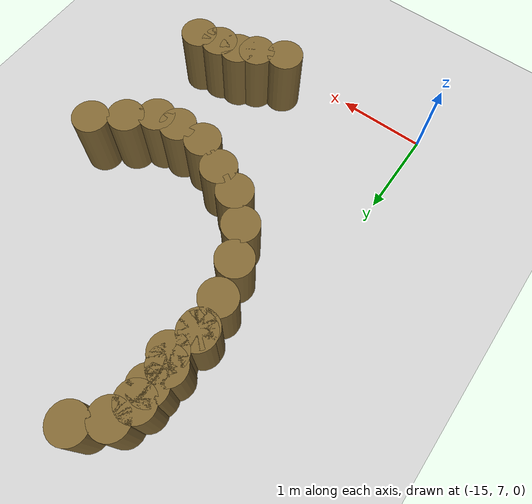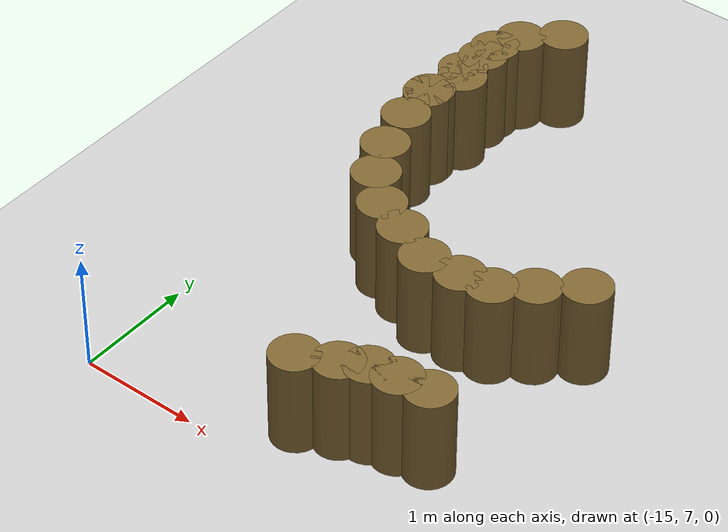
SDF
<sdf version="1.6">
 <world name="default">
  <model name="ground_plane">
   <static>1</static>
   <link name="link">
    <collision name="collision">
     <geometry><plane><normal>0 0 1</normal><size>100 100</size></plane></geometry>
     <surface><friction><ode><mu>100</mu><mu2>50</mu2></ode></friction></surface>
    </collision>
    <visual name="visual">
     <cast_shadows>0</cast_shadows>
     <geometry><plane><normal>0 0 1</normal><size>100 100</size></plane></geometry>
     <material>
      <script><uri>file://media/materials/scripts/gazebo.material</uri><name>Gazebo/Grey</name></script>
     </material>
    </visual>
   </link>
  </model>
  <model name="mini_cylinder_0_clone_0_clone_clone_clone_clone_3_clone_20_clone_59">
   <link name="link">
    <inertial>
     <mass>1</mass>
     <inertia><ixx>0.145833</ixx><ixy>0</ixy><ixz>0</ixz><iyy>0.145833</iyy><iyz>0</iyz><izz>0.125</izz></inertia>
    </inertial>
    <visual name="visual">
     <geometry><cylinder><radius>0.2</radius><length>0.8</length></cylinder></geometry>
     <material>
      <script><name>Gazebo/Grey</name><uri>file://media/materials/scripts/gazebo.material</uri></script>
      <shader type="vertex"><normal_map>__default__</normal_map></shader>
      <ambient>0.5 0.4 0.2 1</ambient>
      <diffuse>0.7 0.7 0.7 1</diffuse>
      <specular>0.01 0.01 0.01 1</specular>
      <emissive>0 0 0 1</emissive>
     </material>
    </visual>
    <collision name="collision">
     <geometry><cylinder><radius>0.2</radius><length>0.8</length></cylinder></geometry>
     <surface>
      <friction>
       <ode><mu>1</mu><mu2>1</mu2><fdir1>0 0 0</fdir1><slip1>0</slip1><slip2>0</slip2></ode>
       <torsional>
        <coefficient>1</coefficient>
        <patch_radius>0</patch_radius>
        <surface_radius>0</surface_radius>
        <use_patch_radius>1</use_patch_radius>
        <ode><slip>0</slip></ode>
       </torsional>
      </friction>
      <bounce><restitution_coefficient>0</restitution_coefficient><threshold>1e+06</threshold></bounce>
      <contact>
       <collide_without_contact>0</collide_without_contact>
       <collide_without_contact_bitmask>1</collide_without_contact_bitmask>
       <collide_bitmask>1</collide_bitmask>
       <ode>
        <soft_cfm>0</soft_cfm>
        <soft_erp>0.2</soft_erp>
        <kp>1e+13</kp>
        <kd>1</kd>
        <max_vel>0.01</max_vel>
        <min_depth>0</min_depth>
       </ode>
       <bullet>
        <split_impulse>1</split_impulse>
        <split_impulse_penetration_threshold>-0.01</split_impulse_penetration_threshold>
        <soft_cfm>0</soft_cfm>
        <soft_erp>0.2</soft_erp>
        <kp>1e+13</kp>
        <kd>1</kd>
       </bullet>
      </contact>
     </surface>
    </collision>
   </link>
   <static>1</static>
   <pose>-13.3251 7.39537 0.4 0 -0 0</pose>
  </model>
  <model name="mini_cylinder_0_clone_0_clone_clone_clone_clone_3_clone_20_clone_60">
   <link name="link">
    <inertial>
     <mass>1</mass>
     <inertia><ixx>0.145833</ixx><ixy>0</ixy><ixz>0</ixz><iyy>0.145833</iyy><iyz>0</iyz><izz>0.125</izz></inertia>
    </inertial>
    <visual name="visual">
     <geometry><cylinder><radius>0.2</radius><length>0.8</length></cylinder></geometry>
     <material>
      <script><name>Gazebo/Grey</name><uri>file://media/materials/scripts/gazebo.material</uri></script>
      <shader type="vertex"><normal_map>__default__</normal_map></shader>
      <ambient>0.5 0.4 0.2 1</ambient>
      <diffuse>0.7 0.7 0.7 1</diffuse>
      <specular>0.01 0.01 0.01 1</specular>
      <emissive>0 0 0 1</emissive>
     </material>
    </visual>
    <collision name="collision">
     <geometry><cylinder><radius>0.2</radius><length>0.8</length></cylinder></geometry>
     <surface>
      <friction>
       <ode><mu>1</mu><mu2>1</mu2><fdir1>0 0 0</fdir1><slip1>0</slip1><slip2>0</slip2></ode>
       <torsional>
        <coefficient>1</coefficient>
        <patch_radius>0</patch_radius>
        <surface_radius>0</surface_radius>
        <use_patch_radius>1</use_patch_radius>
        <ode><slip>0</slip></ode>
       </torsional>
      </friction>
      <bounce><restitution_coefficient>0</restitution_coefficient><threshold>1e+06</threshold></bounce>
      <contact>
       <collide_without_contact>0</collide_without_contact>
       <collide_without_contact_bitmask>1</collide_without_contact_bitmask>
       <collide_bitmask>1</collide_bitmask>
       <ode>
        <soft_cfm>0</soft_cfm>
        <soft_erp>0.2</soft_erp>
        <kp>1e+13</kp>
        <kd>1</kd>
        <max_vel>0.01</max_vel>
        <min_depth>0</min_depth>
       </ode>
       <bullet>
        <split_impulse>1</split_impulse>
        <split_impulse_penetration_threshold>-0.01</split_impulse_penetration_threshold>
        <soft_cfm>0</soft_cfm>
        <soft_erp>0.2</soft_erp>
        <kp>1e+13</kp>
        <kd>1</kd>
       </bullet>
      </contact>
     </surface>
    </collision>
   </link>
   <static>1</static>
   <pose>-13.0347 7.53038 0.4 0 -0 0</pose>
  </model>
  <model name="mini_cylinder_0_clone_0_clone_clone_clone_clone_3_clone_20_clone_61">
   <link name="link">
    <inertial>
     <mass>1</mass>
     <inertia><ixx>0.145833</ixx><ixy>0</ixy><ixz>0</ixz><iyy>0.145833</iyy><iyz>0</iyz><izz>0.125</izz></inertia>
    </inertial>
    <visual name="visual">
     <geometry><cylinder><radius>0.2</radius><length>0.8</length></cylinder></geometry>
     <material>
      <script><name>Gazebo/Grey</name><uri>file://media/materials/scripts/gazebo.material</uri></script>
      <shader type="vertex"><normal_map>__default__</normal_map></shader>
      <ambient>0.5 0.4 0.2 1</ambient>
      <diffuse>0.7 0.7 0.7 1</diffuse>
      <specular>0.01 0.01 0.01 1</specular>
      <emissive>0 0 0 1</emissive>
     </material>
    </visual>
    <collision name="collision">
     <geometry><cylinder><radius>0.2</radius><length>0.8</length></cylinder></geometry>
     <surface>
      <friction>
       <ode><mu>1</mu><mu2>1</mu2><fdir1>0 0 0</fdir1><slip1>0</slip1><slip2>0</slip2></ode>
       <torsional>
        <coefficient>1</coefficient>
        <patch_radius>0</patch_radius>
        <surface_radius>0</surface_radius>
        <use_patch_radius>1</use_patch_radius>
        <ode><slip>0</slip></ode>
       </torsional>
      </friction>
      <bounce><restitution_coefficient>0</restitution_coefficient><threshold>1e+06</threshold></bounce>
      <contact>
       <collide_without_contact>0</collide_without_contact>
       <collide_without_contact_bitmask>1</collide_without_contact_bitmask>
       <collide_bitmask>1</collide_bitmask>
       <ode>
        <soft_cfm>0</soft_cfm>
        <soft_erp>0.2</soft_erp>
        <kp>1e+13</kp>
        <kd>1</kd>
        <max_vel>0.01</max_vel>
        <min_depth>0</min_depth>
       </ode>
       <bullet>
        <split_impulse>1</split_impulse>
        <split_impulse_penetration_threshold>-0.01</split_impulse_penetration_threshold>
        <soft_cfm>0</soft_cfm>
        <soft_erp>0.2</soft_erp>
        <kp>1e+13</kp>
        <kd>1</kd>
       </bullet>
      </contact>
     </surface>
    </collision>
   </link>
   <static>1</static>
   <pose>-12.6146 7.668 0.4 0 -0 0</pose>
  </model>
  <model name="mini_cylinder_0_clone_0_clone_clone_clone_clone_3_clone_20_clone_63">
   <link name="link">
    <inertial>
     <mass>1</mass>
     <inertia><ixx>0.145833</ixx><ixy>0</ixy><ixz>0</ixz><iyy>0.145833</iyy><iyz>0</iyz><izz>0.125</izz></inertia>
    </inertial>
    <visual name="visual">
     <geometry><cylinder><radius>0.2</radius><length>0.8</length></cylinder></geometry>
     <material>
      <script><name>Gazebo/Grey</name><uri>file://media/materials/scripts/gazebo.material</uri></script>
      <shader type="vertex"><normal_map>__default__</normal_map></shader>
      <ambient>0.5 0.4 0.2 1</ambient>
      <diffuse>0.7 0.7 0.7 1</diffuse>
      <specular>0.01 0.01 0.01 1</specular>
      <emissive>0 0 0 1</emissive>
     </material>
    </visual>
    <collision name="collision">
     <geometry><cylinder><radius>0.2</radius><length>0.8</length></cylinder></geometry>
     <surface>
      <friction>
       <ode><mu>1</mu><mu2>1</mu2><fdir1>0 0 0</fdir1><slip1>0</slip1><slip2>0</slip2></ode>
       <torsional>
        <coefficient>1</coefficient>
        <patch_radius>0</patch_radius>
        <surface_radius>0</surface_radius>
        <use_patch_radius>1</use_patch_radius>
        <ode><slip>0</slip></ode>
       </torsional>
      </friction>
      <bounce><restitution_coefficient>0</restitution_coefficient><threshold>1e+06</threshold></bounce>
      <contact>
       <collide_without_contact>0</collide_without_contact>
       <collide_without_contact_bitmask>1</collide_without_contact_bitmask>
       <collide_bitmask>1</collide_bitmask>
       <ode>
        <soft_cfm>0</soft_cfm>
        <soft_erp>0.2</soft_erp>
        <kp>1e+13</kp>
        <kd>1</kd>
        <max_vel>0.01</max_vel>
        <min_depth>0</min_depth>
       </ode>
       <bullet>
        <split_impulse>1</split_impulse>
        <split_impulse_penetration_threshold>-0.01</split_impulse_penetration_threshold>
        <soft_cfm>0</soft_cfm>
        <soft_erp>0.2</soft_erp>
        <kp>1e+13</kp>
        <kd>1</kd>
       </bullet>
      </contact>
     </surface>
    </collision>
   </link>
   <static>1</static>
   <pose>-12.8414 7.63132 0.4 0 -0 0</pose>
  </model>
  <model name="mini_cylinder_0_clone_0_clone_clone_clone_clone_3_clone_20_clone_64">
   <link name="link">
    <inertial>
     <mass>1</mass>
     <inertia><ixx>0.145833</ixx><ixy>0</ixy><ixz>0</ixz><iyy>0.145833</iyy><iyz>0</iyz><izz>0.125</izz></inertia>
    </inertial>
    <visual name="visual">
     <geometry><cylinder><radius>0.2</radius><length>0.8</length></cylinder></geometry>
     <material>
      <script><name>Gazebo/Grey</name><uri>file://media/materials/scripts/gazebo.material</uri></script>
      <shader type="vertex"><normal_map>__default__</normal_map></shader>
      <ambient>0.5 0.4 0.2 1</ambient>
      <diffuse>0.7 0.7 0.7 1</diffuse>
      <specular>0.01 0.01 0.01 1</specular>
      <emissive>0 0 0 1</emissive>
     </material>
    </visual>
    <collision name="collision">
     <geometry><cylinder><radius>0.2</radius><length>0.8</length></cylinder></geometry>
     <surface>
      <friction>
       <ode><mu>1</mu><mu2>1</mu2><fdir1>0 0 0</fdir1><slip1>0</slip1><slip2>0</slip2></ode>
       <torsional>
        <coefficient>1</coefficient>
        <patch_radius>0</patch_radius>
        <surface_radius>0</surface_radius>
        <use_patch_radius>1</use_patch_radius>
        <ode><slip>0</slip></ode>
       </torsional>
      </friction>
      <bounce><restitution_coefficient>0</restitution_coefficient><threshold>1e+06</threshold></bounce>
      <contact>
       <collide_without_contact>0</collide_without_contact>
       <collide_without_contact_bitmask>1</collide_without_contact_bitmask>
       <collide_bitmask>1</collide_bitmask>
       <ode>
        <soft_cfm>0</soft_cfm>
        <soft_erp>0.2</soft_erp>
        <kp>1e+13</kp>
        <kd>1</kd>
        <max_vel>0.01</max_vel>
        <min_depth>0</min_depth>
       </ode>
       <bullet>
        <split_impulse>1</split_impulse>
        <split_impulse_penetration_threshold>-0.01</split_impulse_penetration_threshold>
        <soft_cfm>0</soft_cfm>
        <soft_erp>0.2</soft_erp>
        <kp>1e+13</kp>
        <kd>1</kd>
       </bullet>
      </contact>
     </surface>
    </collision>
   </link>
   <static>1</static>
   <pose>-12.3554 7.70459 0.4 0 -0 0</pose>
  </model>
  <model name="mini_cylinder_0_clone_0_clone_clone_clone_clone_3_clone_20_clone_81">
   <link name="link">
    <inertial>
     <mass>1</mass>
     <inertia><ixx>0.145833</ixx><ixy>0</ixy><ixz>0</ixz><iyy>0.145833</iyy><iyz>0</iyz><izz>0.125</izz></inertia>
    </inertial>
    <visual name="visual">
     <geometry><cylinder><radius>0.2</radius><length>0.8</length></cylinder></geometry>
     <material>
      <script><name>Gazebo/Grey</name><uri>file://media/materials/scripts/gazebo.material</uri></script>
      <shader type="vertex"><normal_map>__default__</normal_map></shader>
      <ambient>0.5 0.4 0.2 1</ambient>
      <diffuse>0.7 0.7 0.7 1</diffuse>
      <specular>0.01 0.01 0.01 1</specular>
      <emissive>0 0 0 1</emissive>
     </material>
    </visual>
    <collision name="collision">
     <geometry><cylinder><radius>0.2</radius><length>0.8</length></cylinder></geometry>
     <surface>
      <friction>
       <ode><mu>1</mu><mu2>1</mu2><fdir1>0 0 0</fdir1><slip1>0</slip1><slip2>0</slip2></ode>
       <torsional>
        <coefficient>1</coefficient>
        <patch_radius>0</patch_radius>
        <surface_radius>0</surface_radius>
        <use_patch_radius>1</use_patch_radius>
        <ode><slip>0</slip></ode>
       </torsional>
      </friction>
      <bounce><restitution_coefficient>0</restitution_coefficient><threshold>1e+06</threshold></bounce>
      <contact>
       <collide_without_contact>0</collide_without_contact>
       <collide_without_contact_bitmask>1</collide_without_contact_bitmask>
       <collide_bitmask>1</collide_bitmask>
       <ode>
        <soft_cfm>0</soft_cfm>
        <soft_erp>0.2</soft_erp>
        <kp>1e+13</kp>
        <kd>1</kd>
        <max_vel>0.01</max_vel>
        <min_depth>0</min_depth>
       </ode>
       <bullet>
        <split_impulse>1</split_impulse>
        <split_impulse_penetration_threshold>-0.01</split_impulse_penetration_threshold>
        <soft_cfm>0</soft_cfm>
        <soft_erp>0.2</soft_erp>
        <kp>1e+13</kp>
        <kd>1</kd>
       </bullet>
      </contact>
     </surface>
    </collision>
   </link>
   <static>1</static>
   <pose>-12.1303 9.27589 0.4 0 -0 0</pose>
  </model>
  <model name="mini_cylinder_0_clone_0_clone_clone_clone_clone_3_clone_20_clone_82">
   <link name="link">
    <inertial>
     <mass>1</mass>
     <inertia><ixx>0.145833</ixx><ixy>0</ixy><ixz>0</ixz><iyy>0.145833</iyy><iyz>0</iyz><izz>0.125</izz></inertia>
    </inertial>
    <visual name="visual">
     <geometry><cylinder><radius>0.2</radius><length>0.8</length></cylinder></geometry>
     <material>
      <script><name>Gazebo/Grey</name><uri>file://media/materials/scripts/gazebo.material</uri></script>
      <shader type="vertex"><normal_map>__default__</normal_map></shader>
      <ambient>0.5 0.4 0.2 1</ambient>
      <diffuse>0.7 0.7 0.7 1</diffuse>
      <specular>0.01 0.01 0.01 1</specular>
      <emissive>0 0 0 1</emissive>
     </material>
    </visual>
    <collision name="collision">
     <geometry><cylinder><radius>0.2</radius><length>0.8</length></cylinder></geometry>
     <surface>
      <friction>
       <ode><mu>1</mu><mu2>1</mu2><fdir1>0 0 0</fdir1><slip1>0</slip1><slip2>0</slip2></ode>
       <torsional>
        <coefficient>1</coefficient>
        <patch_radius>0</patch_radius>
        <surface_radius>0</surface_radius>
        <use_patch_radius>1</use_patch_radius>
        <ode><slip>0</slip></ode>
       </torsional>
      </friction>
      <bounce><restitution_coefficient>0</restitution_coefficient><threshold>1e+06</threshold></bounce>
      <contact>
       <collide_without_contact>0</collide_without_contact>
       <collide_without_contact_bitmask>1</collide_without_contact_bitmask>
       <collide_bitmask>1</collide_bitmask>
       <ode>
        <soft_cfm>0</soft_cfm>
        <soft_erp>0.2</soft_erp>
        <kp>1e+13</kp>
        <kd>1</kd>
        <max_vel>0.01</max_vel>
        <min_depth>0</min_depth>
       </ode>
       <bullet>
        <split_impulse>1</split_impulse>
        <split_impulse_penetration_threshold>-0.01</split_impulse_penetration_threshold>
        <soft_cfm>0</soft_cfm>
        <soft_erp>0.2</soft_erp>
        <kp>1e+13</kp>
        <kd>1</kd>
       </bullet>
      </contact>
     </surface>
    </collision>
   </link>
   <static>1</static>
   <pose>-12.4197 9.04399 0.4 0 -0 0</pose>
  </model>
  <model name="mini_cylinder_0_clone_0_clone_clone_clone_clone_3_clone_20_clone_83">
   <link name="link">
    <inertial>
     <mass>1</mass>
     <inertia><ixx>0.145833</ixx><ixy>0</ixy><ixz>0</ixz><iyy>0.145833</iyy><iyz>0</iyz><izz>0.125</izz></inertia>
    </inertial>
    <visual name="visual">
     <geometry><cylinder><radius>0.2</radius><length>0.8</length></cylinder></geometry>
     <material>
      <script><name>Gazebo/Grey</name><uri>file://media/materials/scripts/gazebo.material</uri></script>
      <shader type="vertex"><normal_map>__default__</normal_map></shader>
      <ambient>0.5 0.4 0.2 1</ambient>
      <diffuse>0.7 0.7 0.7 1</diffuse>
      <specular>0.01 0.01 0.01 1</specular>
      <emissive>0 0 0 1</emissive>
     </material>
    </visual>
    <collision name="collision">
     <geometry><cylinder><radius>0.2</radius><length>0.8</length></cylinder></geometry>
     <surface>
      <friction>
       <ode><mu>1</mu><mu2>1</mu2><fdir1>0 0 0</fdir1><slip1>0</slip1><slip2>0</slip2></ode>
       <torsional>
        <coefficient>1</coefficient>
        <patch_radius>0</patch_radius>
        <surface_radius>0</surface_radius>
        <use_patch_radius>1</use_patch_radius>
        <ode><slip>0</slip></ode>
       </torsional>
      </friction>
      <bounce><restitution_coefficient>0</restitution_coefficient><threshold>1e+06</threshold></bounce>
      <contact>
       <collide_without_contact>0</collide_without_contact>
       <collide_without_contact_bitmask>1</collide_without_contact_bitmask>
       <collide_bitmask>1</collide_bitmask>
       <ode>
        <soft_cfm>0</soft_cfm>
        <soft_erp>0.2</soft_erp>
        <kp>1e+13</kp>
        <kd>1</kd>
        <max_vel>0.01</max_vel>
        <min_depth>0</min_depth>
       </ode>
       <bullet>
        <split_impulse>1</split_impulse>
        <split_impulse_penetration_threshold>-0.01</split_impulse_penetration_threshold>
        <soft_cfm>0</soft_cfm>
        <soft_erp>0.2</soft_erp>
        <kp>1e+13</kp>
        <kd>1</kd>
       </bullet>
      </contact>
     </surface>
    </collision>
   </link>
   <static>1</static>
   <pose>-12.6767 8.84445 0.4 0 -0 0</pose>
  </model>
  <model name="mini_cylinder_0_clone_0_clone_clone_clone_clone_3_clone_20_clone_84">
   <link name="link">
    <inertial>
     <mass>1</mass>
     <inertia><ixx>0.145833</ixx><ixy>0</ixy><ixz>0</ixz><iyy>0.145833</iyy><iyz>0</iyz><izz>0.125</izz></inertia>
    </inertial>
    <visual name="visual">
     <geometry><cylinder><radius>0.2</radius><length>0.8</length></cylinder></geometry>
     <material>
      <script><name>Gazebo/Grey</name><uri>file://media/materials/scripts/gazebo.material</uri></script>
      <shader type="vertex"><normal_map>__default__</normal_map></shader>
      <ambient>0.5 0.4 0.2 1</ambient>
      <diffuse>0.7 0.7 0.7 1</diffuse>
      <specular>0.01 0.01 0.01 1</specular>
      <emissive>0 0 0 1</emissive>
     </material>
    </visual>
    <collision name="collision">
     <geometry><cylinder><radius>0.2</radius><length>0.8</length></cylinder></geometry>
     <surface>
      <friction>
       <ode><mu>1</mu><mu2>1</mu2><fdir1>0 0 0</fdir1><slip1>0</slip1><slip2>0</slip2></ode>
       <torsional>
        <coefficient>1</coefficient>
        <patch_radius>0</patch_radius>
        <surface_radius>0</surface_radius>
        <use_patch_radius>1</use_patch_radius>
        <ode><slip>0</slip></ode>
       </torsional>
      </friction>
      <bounce><restitution_coefficient>0</restitution_coefficient><threshold>1e+06</threshold></bounce>
      <contact>
       <collide_without_contact>0</collide_without_contact>
       <collide_without_contact_bitmask>1</collide_without_contact_bitmask>
       <collide_bitmask>1</collide_bitmask>
       <ode>
        <soft_cfm>0</soft_cfm>
        <soft_erp>0.2</soft_erp>
        <kp>1e+13</kp>
        <kd>1</kd>
        <max_vel>0.01</max_vel>
        <min_depth>0</min_depth>
       </ode>
       <bullet>
        <split_impulse>1</split_impulse>
        <split_impulse_penetration_threshold>-0.01</split_impulse_penetration_threshold>
        <soft_cfm>0</soft_cfm>
        <soft_erp>0.2</soft_erp>
        <kp>1e+13</kp>
        <kd>1</kd>
       </bullet>
      </contact>
     </surface>
    </collision>
   </link>
   <static>1</static>
   <pose>-12.9368 8.80782 0.4 0 -0 0</pose>
  </model>
  <model name="mini_cylinder_0_clone_0_clone_clone_clone_clone_3_clone_20_clone_85">
   <link name="link">
    <inertial>
     <mass>1</mass>
     <inertia><ixx>0.145833</ixx><ixy>0</ixy><ixz>0</ixz><iyy>0.145833</iyy><iyz>0</iyz><izz>0.125</izz></inertia>
    </inertial>
    <visual name="visual">
     <geometry><cylinder><radius>0.2</radius><length>0.8</length></cylinder></geometry>
     <material>
      <script><name>Gazebo/Grey</name><uri>file://media/materials/scripts/gazebo.material</uri></script>
      <shader type="vertex"><normal_map>__default__</normal_map></shader>
      <ambient>0.5 0.4 0.2 1</ambient>
      <diffuse>0.7 0.7 0.7 1</diffuse>
      <specular>0.01 0.01 0.01 1</specular>
      <emissive>0 0 0 1</emissive>
     </material>
    </visual>
    <collision name="collision">
     <geometry><cylinder><radius>0.2</radius><length>0.8</length></cylinder></geometry>
     <surface>
      <friction>
       <ode><mu>1</mu><mu2>1</mu2><fdir1>0 0 0</fdir1><slip1>0</slip1><slip2>0</slip2></ode>
       <torsional>
        <coefficient>1</coefficient>
        <patch_radius>0</patch_radius>
        <surface_radius>0</surface_radius>
        <use_patch_radius>1</use_patch_radius>
        <ode><slip>0</slip></ode>
       </torsional>
      </friction>
      <bounce><restitution_coefficient>0</restitution_coefficient><threshold>1e+06</threshold></bounce>
      <contact>
       <collide_without_contact>0</collide_without_contact>
       <collide_without_contact_bitmask>1</collide_without_contact_bitmask>
       <collide_bitmask>1</collide_bitmask>
       <ode>
        <soft_cfm>0</soft_cfm>
        <soft_erp>0.2</soft_erp>
        <kp>1e+13</kp>
        <kd>1</kd>
        <max_vel>0.01</max_vel>
        <min_depth>0</min_depth>
       </ode>
       <bullet>
        <split_impulse>1</split_impulse>
        <split_impulse_penetration_threshold>-0.01</split_impulse_penetration_threshold>
        <soft_cfm>0</soft_cfm>
        <soft_erp>0.2</soft_erp>
        <kp>1e+13</kp>
        <kd>1</kd>
       </bullet>
      </contact>
     </surface>
    </collision>
   </link>
   <static>1</static>
   <pose>-13.261 8.80201 0.4 0 -0 0</pose>
  </model>
  <model name="mini_cylinder_0_clone_0_clone_clone_clone_clone_3_clone_20_clone_86">
   <link name="link">
    <inertial>
     <mass>1</mass>
     <inertia><ixx>0.145833</ixx><ixy>0</ixy><ixz>0</ixz><iyy>0.145833</iyy><iyz>0</iyz><izz>0.125</izz></inertia>
    </inertial>
    <visual name="visual">
     <geometry><cylinder><radius>0.2</radius><length>0.8</length></cylinder></geometry>
     <material>
      <script><name>Gazebo/Grey</name><uri>file://media/materials/scripts/gazebo.material</uri></script>
      <shader type="vertex"><normal_map>__default__</normal_map></shader>
      <ambient>0.5 0.4 0.2 1</ambient>
      <diffuse>0.7 0.7 0.7 1</diffuse>
      <specular>0.01 0.01 0.01 1</specular>
      <emissive>0 0 0 1</emissive>
     </material>
    </visual>
    <collision name="collision">
     <geometry><cylinder><radius>0.2</radius><length>0.8</length></cylinder></geometry>
     <surface>
      <friction>
       <ode><mu>1</mu><mu2>1</mu2><fdir1>0 0 0</fdir1><slip1>0</slip1><slip2>0</slip2></ode>
       <torsional>
        <coefficient>1</coefficient>
        <patch_radius>0</patch_radius>
        <surface_radius>0</surface_radius>
        <use_patch_radius>1</use_patch_radius>
        <ode><slip>0</slip></ode>
       </torsional>
      </friction>
      <bounce><restitution_coefficient>0</restitution_coefficient><threshold>1e+06</threshold></bounce>
      <contact>
       <collide_without_contact>0</collide_without_contact>
       <collide_without_contact_bitmask>1</collide_without_contact_bitmask>
       <collide_bitmask>1</collide_bitmask>
       <ode>
        <soft_cfm>0</soft_cfm>
        <soft_erp>0.2</soft_erp>
        <kp>1e+13</kp>
        <kd>1</kd>
        <max_vel>0.01</max_vel>
        <min_depth>0</min_depth>
       </ode>
       <bullet>
        <split_impulse>1</split_impulse>
        <split_impulse_penetration_threshold>-0.01</split_impulse_penetration_threshold>
        <soft_cfm>0</soft_cfm>
        <soft_erp>0.2</soft_erp>
        <kp>1e+13</kp>
        <kd>1</kd>
       </bullet>
      </contact>
     </surface>
    </collision>
   </link>
   <static>1</static>
   <pose>-13.5889 8.95957 0.4 0 -0 0</pose>
  </model>
  <model name="mini_cylinder_0_clone_0_clone_clone_clone_clone_3_clone_20_clone_87">
   <link name="link">
    <inertial>
     <mass>1</mass>
     <inertia><ixx>0.145833</ixx><ixy>0</ixy><ixz>0</ixz><iyy>0.145833</iyy><iyz>0</iyz><izz>0.125</izz></inertia>
    </inertial>
    <visual name="visual">
     <geometry><cylinder><radius>0.2</radius><length>0.8</length></cylinder></geometry>
     <material>
      <script><name>Gazebo/Grey</name><uri>file://media/materials/scripts/gazebo.material</uri></script>
      <shader type="vertex"><normal_map>__default__</normal_map></shader>
      <ambient>0.5 0.4 0.2 1</ambient>
      <diffuse>0.7 0.7 0.7 1</diffuse>
      <specular>0.01 0.01 0.01 1</specular>
      <emissive>0 0 0 1</emissive>
     </material>
    </visual>
    <collision name="collision">
     <geometry><cylinder><radius>0.2</radius><length>0.8</length></cylinder></geometry>
     <surface>
      <friction>
       <ode><mu>1</mu><mu2>1</mu2><fdir1>0 0 0</fdir1><slip1>0</slip1><slip2>0</slip2></ode>
       <torsional>
        <coefficient>1</coefficient>
        <patch_radius>0</patch_radius>
        <surface_radius>0</surface_radius>
        <use_patch_radius>1</use_patch_radius>
        <ode><slip>0</slip></ode>
       </torsional>
      </friction>
      <bounce><restitution_coefficient>0</restitution_coefficient><threshold>1e+06</threshold></bounce>
      <contact>
       <collide_without_contact>0</collide_without_contact>
       <collide_without_contact_bitmask>1</collide_without_contact_bitmask>
       <collide_bitmask>1</collide_bitmask>
       <ode>
        <soft_cfm>0</soft_cfm>
        <soft_erp>0.2</soft_erp>
        <kp>1e+13</kp>
        <kd>1</kd>
        <max_vel>0.01</max_vel>
        <min_depth>0</min_depth>
       </ode>
       <bullet>
        <split_impulse>1</split_impulse>
        <split_impulse_penetration_threshold>-0.01</split_impulse_penetration_threshold>
        <soft_cfm>0</soft_cfm>
        <soft_erp>0.2</soft_erp>
        <kp>1e+13</kp>
        <kd>1</kd>
       </bullet>
      </contact>
     </surface>
    </collision>
   </link>
   <static>1</static>
   <pose>-13.8834 9.08479 0.4 0 -0 0</pose>
  </model>
  <model name="mini_cylinder_0_clone_0_clone_clone_clone_clone_3_clone_20_clone_88">
   <link name="link">
    <inertial>
     <mass>1</mass>
     <inertia><ixx>0.145833</ixx><ixy>0</ixy><ixz>0</ixz><iyy>0.145833</iyy><iyz>0</iyz><izz>0.125</izz></inertia>
    </inertial>
    <visual name="visual">
     <geometry><cylinder><radius>0.2</radius><length>0.8</length></cylinder></geometry>
     <material>
      <script><name>Gazebo/Grey</name><uri>file://media/materials/scripts/gazebo.material</uri></script>
      <shader type="vertex"><normal_map>__default__</normal_map></shader>
      <ambient>0.5 0.4 0.2 1</ambient>
      <diffuse>0.7 0.7 0.7 1</diffuse>
      <specular>0.01 0.01 0.01 1</specular>
      <emissive>0 0 0 1</emissive>
     </material>
    </visual>
    <collision name="collision">
     <geometry><cylinder><radius>0.2</radius><length>0.8</length></cylinder></geometry>
     <surface>
      <friction>
       <ode><mu>1</mu><mu2>1</mu2><fdir1>0 0 0</fdir1><slip1>0</slip1><slip2>0</slip2></ode>
       <torsional>
        <coefficient>1</coefficient>
        <patch_radius>0</patch_radius>
        <surface_radius>0</surface_radius>
        <use_patch_radius>1</use_patch_radius>
        <ode><slip>0</slip></ode>
       </torsional>
      </friction>
      <bounce><restitution_coefficient>0</restitution_coefficient><threshold>1e+06</threshold></bounce>
      <contact>
       <collide_without_contact>0</collide_without_contact>
       <collide_without_contact_bitmask>1</collide_without_contact_bitmask>
       <collide_bitmask>1</collide_bitmask>
       <ode>
        <soft_cfm>0</soft_cfm>
        <soft_erp>0.2</soft_erp>
        <kp>1e+13</kp>
        <kd>1</kd>
        <max_vel>0.01</max_vel>
        <min_depth>0</min_depth>
       </ode>
       <bullet>
        <split_impulse>1</split_impulse>
        <split_impulse_penetration_threshold>-0.01</split_impulse_penetration_threshold>
        <soft_cfm>0</soft_cfm>
        <soft_erp>0.2</soft_erp>
        <kp>1e+13</kp>
        <kd>1</kd>
       </bullet>
      </contact>
     </surface>
    </collision>
   </link>
   <static>1</static>
   <pose>-14.148 9.34129 0.4 0 -0 0</pose>
  </model>
  <model name="mini_cylinder_0_clone_0_clone_clone_clone_clone_3_clone_20_clone_89">
   <link name="link">
    <inertial>
     <mass>1</mass>
     <inertia><ixx>0.145833</ixx><ixy>0</ixy><ixz>0</ixz><iyy>0.145833</iyy><iyz>0</iyz><izz>0.125</izz></inertia>
    </inertial>
    <visual name="visual">
     <geometry><cylinder><radius>0.2</radius><length>0.8</length></cylinder></geometry>
     <material>
      <script><name>Gazebo/Grey</name><uri>file://media/materials/scripts/gazebo.material</uri></script>
      <shader type="vertex"><normal_map>__default__</normal_map></shader>
      <ambient>0.5 0.4 0.2 1</ambient>
      <diffuse>0.7 0.7 0.7 1</diffuse>
      <specular>0.01 0.01 0.01 1</specular>
      <emissive>0 0 0 1</emissive>
     </material>
    </visual>
    <collision name="collision">
     <geometry><cylinder><radius>0.2</radius><length>0.8</length></cylinder></geometry>
     <surface>
      <friction>
       <ode><mu>1</mu><mu2>1</mu2><fdir1>0 0 0</fdir1><slip1>0</slip1><slip2>0</slip2></ode>
       <torsional>
        <coefficient>1</coefficient>
        <patch_radius>0</patch_radius>
        <surface_radius>0</surface_radius>
        <use_patch_radius>1</use_patch_radius>
        <ode><slip>0</slip></ode>
       </torsional>
      </friction>
      <bounce><restitution_coefficient>0</restitution_coefficient><threshold>1e+06</threshold></bounce>
      <contact>
       <collide_without_contact>0</collide_without_contact>
       <collide_without_contact_bitmask>1</collide_without_contact_bitmask>
       <collide_bitmask>1</collide_bitmask>
       <ode>
        <soft_cfm>0</soft_cfm>
        <soft_erp>0.2</soft_erp>
        <kp>1e+13</kp>
        <kd>1</kd>
        <max_vel>0.01</max_vel>
        <min_depth>0</min_depth>
       </ode>
       <bullet>
        <split_impulse>1</split_impulse>
        <split_impulse_penetration_threshold>-0.01</split_impulse_penetration_threshold>
        <soft_cfm>0</soft_cfm>
        <soft_erp>0.2</soft_erp>
        <kp>1e+13</kp>
        <kd>1</kd>
       </bullet>
      </contact>
     </surface>
    </collision>
   </link>
   <static>1</static>
   <pose>-14.3158 9.66404 0.4 0 -0 0</pose>
  </model>
  <model name="mini_cylinder_0_clone_0_clone_clone_clone_clone_3_clone_20_clone_90">
   <link name="link">
    <inertial>
     <mass>1</mass>
     <inertia><ixx>0.145833</ixx><ixy>0</ixy><ixz>0</ixz><iyy>0.145833</iyy><iyz>0</iyz><izz>0.125</izz></inertia>
    </inertial>
    <visual name="visual">
     <geometry><cylinder><radius>0.2</radius><length>0.8</length></cylinder></geometry>
     <material>
      <script><name>Gazebo/Grey</name><uri>file://media/materials/scripts/gazebo.material</uri></script>
      <shader type="vertex"><normal_map>__default__</normal_map></shader>
      <ambient>0.5 0.4 0.2 1</ambient>
      <diffuse>0.7 0.7 0.7 1</diffuse>
      <specular>0.01 0.01 0.01 1</specular>
      <emissive>0 0 0 1</emissive>
     </material>
    </visual>
    <collision name="collision">
     <geometry><cylinder><radius>0.2</radius><length>0.8</length></cylinder></geometry>
     <surface>
      <friction>
       <ode><mu>1</mu><mu2>1</mu2><fdir1>0 0 0</fdir1><slip1>0</slip1><slip2>0</slip2></ode>
       <torsional>
        <coefficient>1</coefficient>
        <patch_radius>0</patch_radius>
        <surface_radius>0</surface_radius>
        <use_patch_radius>1</use_patch_radius>
        <ode><slip>0</slip></ode>
       </torsional>
      </friction>
      <bounce><restitution_coefficient>0</restitution_coefficient><threshold>1e+06</threshold></bounce>
      <contact>
       <collide_without_contact>0</collide_without_contact>
       <collide_without_contact_bitmask>1</collide_without_contact_bitmask>
       <collide_bitmask>1</collide_bitmask>
       <ode>
        <soft_cfm>0</soft_cfm>
        <soft_erp>0.2</soft_erp>
        <kp>1e+13</kp>
        <kd>1</kd>
        <max_vel>0.01</max_vel>
        <min_depth>0</min_depth>
       </ode>
       <bullet>
        <split_impulse>1</split_impulse>
        <split_impulse_penetration_threshold>-0.01</split_impulse_penetration_threshold>
        <soft_cfm>0</soft_cfm>
        <soft_erp>0.2</soft_erp>
        <kp>1e+13</kp>
        <kd>1</kd>
       </bullet>
      </contact>
     </surface>
    </collision>
   </link>
   <static>1</static>
   <pose>-14.4197 10.0537 0.4 0 -0 0</pose>
  </model>
  <model name="mini_cylinder_0_clone_0_clone_clone_clone_clone_3_clone_20_clone_91">
   <link name="link">
    <inertial>
     <mass>1</mass>
     <inertia><ixx>0.145833</ixx><ixy>0</ixy><ixz>0</ixz><iyy>0.145833</iyy><iyz>0</iyz><izz>0.125</izz></inertia>
    </inertial>
    <visual name="visual">
     <geometry><cylinder><radius>0.2</radius><length>0.8</length></cylinder></geometry>
     <material>
      <script><name>Gazebo/Grey</name><uri>file://media/materials/scripts/gazebo.material</uri></script>
      <shader type="vertex"><normal_map>__default__</normal_map></shader>
      <ambient>0.5 0.4 0.2 1</ambient>
      <diffuse>0.7 0.7 0.7 1</diffuse>
      <specular>0.01 0.01 0.01 1</specular>
      <emissive>0 0 0 1</emissive>
     </material>
    </visual>
    <collision name="collision">
     <geometry><cylinder><radius>0.2</radius><length>0.8</length></cylinder></geometry>
     <surface>
      <friction>
       <ode><mu>1</mu><mu2>1</mu2><fdir1>0 0 0</fdir1><slip1>0</slip1><slip2>0</slip2></ode>
       <torsional>
        <coefficient>1</coefficient>
        <patch_radius>0</patch_radius>
        <surface_radius>0</surface_radius>
        <use_patch_radius>1</use_patch_radius>
        <ode><slip>0</slip></ode>
       </torsional>
      </friction>
      <bounce><restitution_coefficient>0</restitution_coefficient><threshold>1e+06</threshold></bounce>
      <contact>
       <collide_without_contact>0</collide_without_contact>
       <collide_without_contact_bitmask>1</collide_without_contact_bitmask>
       <collide_bitmask>1</collide_bitmask>
       <ode>
        <soft_cfm>0</soft_cfm>
        <soft_erp>0.2</soft_erp>
        <kp>1e+13</kp>
        <kd>1</kd>
        <max_vel>0.01</max_vel>
        <min_depth>0</min_depth>
       </ode>
       <bullet>
        <split_impulse>1</split_impulse>
        <split_impulse_penetration_threshold>-0.01</split_impulse_penetration_threshold>
        <soft_cfm>0</soft_cfm>
        <soft_erp>0.2</soft_erp>
        <kp>1e+13</kp>
        <kd>1</kd>
       </bullet>
      </contact>
     </surface>
    </collision>
   </link>
   <static>1</static>
   <pose>-14.4579 10.4114 0.4 0 -0 0</pose>
  </model>
  <model name="mini_cylinder_0_clone_0_clone_clone_clone_clone_3_clone_20_clone_92">
   <link name="link">
    <inertial>
     <mass>1</mass>
     <inertia><ixx>0.145833</ixx><ixy>0</ixy><ixz>0</ixz><iyy>0.145833</iyy><iyz>0</iyz><izz>0.125</izz></inertia>
    </inertial>
    <visual name="visual">
     <geometry><cylinder><radius>0.2</radius><length>0.8</length></cylinder></geometry>
     <material>
      <script><name>Gazebo/Grey</name><uri>file://media/materials/scripts/gazebo.material</uri></script>
      <shader type="vertex"><normal_map>__default__</normal_map></shader>
      <ambient>0.5 0.4 0.2 1</ambient>
      <diffuse>0.7 0.7 0.7 1</diffuse>
      <specular>0.01 0.01 0.01 1</specular>
      <emissive>0 0 0 1</emissive>
     </material>
    </visual>
    <collision name="collision">
     <geometry><cylinder><radius>0.2</radius><length>0.8</length></cylinder></geometry>
     <surface>
      <friction>
       <ode><mu>1</mu><mu2>1</mu2><fdir1>0 0 0</fdir1><slip1>0</slip1><slip2>0</slip2></ode>
       <torsional>
        <coefficient>1</coefficient>
        <patch_radius>0</patch_radius>
        <surface_radius>0</surface_radius>
        <use_patch_radius>1</use_patch_radius>
        <ode><slip>0</slip></ode>
       </torsional>
      </friction>
      <bounce><restitution_coefficient>0</restitution_coefficient><threshold>1e+06</threshold></bounce>
      <contact>
       <collide_without_contact>0</collide_without_contact>
       <collide_without_contact_bitmask>1</collide_without_contact_bitmask>
       <collide_bitmask>1</collide_bitmask>
       <ode>
        <soft_cfm>0</soft_cfm>
        <soft_erp>0.2</soft_erp>
        <kp>1e+13</kp>
        <kd>1</kd>
        <max_vel>0.01</max_vel>
        <min_depth>0</min_depth>
       </ode>
       <bullet>
        <split_impulse>1</split_impulse>
        <split_impulse_penetration_threshold>-0.01</split_impulse_penetration_threshold>
        <soft_cfm>0</soft_cfm>
        <soft_erp>0.2</soft_erp>
        <kp>1e+13</kp>
        <kd>1</kd>
       </bullet>
      </contact>
     </surface>
    </collision>
   </link>
   <static>1</static>
   <pose>-14.4319 10.8018 0.4 0 -0 0</pose>
  </model>
  <model name="mini_cylinder_0_clone_0_clone_clone_clone_clone_3_clone_20_clone_93">
   <link name="link">
    <inertial>
     <mass>1</mass>
     <inertia><ixx>0.145833</ixx><ixy>0</ixy><ixz>0</ixz><iyy>0.145833</iyy><iyz>0</iyz><izz>0.125</izz></inertia>
    </inertial>
    <visual name="visual">
     <geometry><cylinder><radius>0.2</radius><length>0.8</length></cylinder></geometry>
     <material>
      <script><name>Gazebo/Grey</name><uri>file://media/materials/scripts/gazebo.material</uri></script>
      <shader type="vertex"><normal_map>__default__</normal_map></shader>
      <ambient>0.5 0.4 0.2 1</ambient>
      <diffuse>0.7 0.7 0.7 1</diffuse>
      <specular>0.01 0.01 0.01 1</specular>
      <emissive>0 0 0 1</emissive>
     </material>
    </visual>
    <collision name="collision">
     <geometry><cylinder><radius>0.2</radius><length>0.8</length></cylinder></geometry>
     <surface>
      <friction>
       <ode><mu>1</mu><mu2>1</mu2><fdir1>0 0 0</fdir1><slip1>0</slip1><slip2>0</slip2></ode>
       <torsional>
        <coefficient>1</coefficient>
        <patch_radius>0</patch_radius>
        <surface_radius>0</surface_radius>
        <use_patch_radius>1</use_patch_radius>
        <ode><slip>0</slip></ode>
       </torsional>
      </friction>
      <bounce><restitution_coefficient>0</restitution_coefficient><threshold>1e+06</threshold></bounce>
      <contact>
       <collide_without_contact>0</collide_without_contact>
       <collide_without_contact_bitmask>1</collide_without_contact_bitmask>
       <collide_bitmask>1</collide_bitmask>
       <ode>
        <soft_cfm>0</soft_cfm>
        <soft_erp>0.2</soft_erp>
        <kp>1e+13</kp>
        <kd>1</kd>
        <max_vel>0.01</max_vel>
        <min_depth>0</min_depth>
       </ode>
       <bullet>
        <split_impulse>1</split_impulse>
        <split_impulse_penetration_threshold>-0.01</split_impulse_penetration_threshold>
        <soft_cfm>0</soft_cfm>
        <soft_erp>0.2</soft_erp>
        <kp>1e+13</kp>
        <kd>1</kd>
       </bullet>
      </contact>
     </surface>
    </collision>
   </link>
   <static>1</static>
   <pose>-14.4055 11.1936 0.4 0 -0 0</pose>
  </model>
  <model name="mini_cylinder_0_clone_0_clone_clone_clone_clone_3_clone_20_clone_94">
   <link name="link">
    <inertial>
     <mass>1</mass>
     <inertia><ixx>0.145833</ixx><ixy>0</ixy><ixz>0</ixz><iyy>0.145833</iyy><iyz>0</iyz><izz>0.125</izz></inertia>
    </inertial>
    <visual name="visual">
     <geometry><cylinder><radius>0.2</radius><length>0.8</length></cylinder></geometry>
     <material>
      <script><name>Gazebo/Grey</name><uri>file://media/materials/scripts/gazebo.material</uri></script>
      <shader type="vertex"><normal_map>__default__</normal_map></shader>
      <ambient>0.5 0.4 0.2 1</ambient>
      <diffuse>0.7 0.7 0.7 1</diffuse>
      <specular>0.01 0.01 0.01 1</specular>
      <emissive>0 0 0 1</emissive>
     </material>
    </visual>
    <collision name="collision">
     <geometry><cylinder><radius>0.2</radius><length>0.8</length></cylinder></geometry>
     <surface>
      <friction>
       <ode><mu>1</mu><mu2>1</mu2><fdir1>0 0 0</fdir1><slip1>0</slip1><slip2>0</slip2></ode>
       <torsional>
        <coefficient>1</coefficient>
        <patch_radius>0</patch_radius>
        <surface_radius>0</surface_radius>
        <use_patch_radius>1</use_patch_radius>
        <ode><slip>0</slip></ode>
       </torsional>
      </friction>
      <bounce><restitution_coefficient>0</restitution_coefficient><threshold>1e+06</threshold></bounce>
      <contact>
       <collide_without_contact>0</collide_without_contact>
       <collide_without_contact_bitmask>1</collide_without_contact_bitmask>
       <collide_bitmask>1</collide_bitmask>
       <ode>
        <soft_cfm>0</soft_cfm>
        <soft_erp>0.2</soft_erp>
        <kp>1e+13</kp>
        <kd>1</kd>
        <max_vel>0.01</max_vel>
        <min_depth>0</min_depth>
       </ode>
       <bullet>
        <split_impulse>1</split_impulse>
        <split_impulse_penetration_threshold>-0.01</split_impulse_penetration_threshold>
        <soft_cfm>0</soft_cfm>
        <soft_erp>0.2</soft_erp>
        <kp>1e+13</kp>
        <kd>1</kd>
       </bullet>
      </contact>
     </surface>
    </collision>
   </link>
   <static>1</static>
   <pose>-14.4035 11.031 0.4 0 -0 0</pose>
  </model>
  <model name="mini_cylinder_0_clone_0_clone_clone_clone_clone_3_clone_20_clone_95">
   <link name="link">
    <inertial>
     <mass>1</mass>
     <inertia><ixx>0.145833</ixx><ixy>0</ixy><ixz>0</ixz><iyy>0.145833</iyy><iyz>0</iyz><izz>0.125</izz></inertia>
    </inertial>
    <visual name="visual">
     <geometry><cylinder><radius>0.2</radius><length>0.8</length></cylinder></geometry>
     <material>
      <script><name>Gazebo/Grey</name><uri>file://media/materials/scripts/gazebo.material</uri></script>
      <shader type="vertex"><normal_map>__default__</normal_map></shader>
      <ambient>0.5 0.4 0.2 1</ambient>
      <diffuse>0.7 0.7 0.7 1</diffuse>
      <specular>0.01 0.01 0.01 1</specular>
      <emissive>0 0 0 1</emissive>
     </material>
    </visual>
    <collision name="collision">
     <geometry><cylinder><radius>0.2</radius><length>0.8</length></cylinder></geometry>
     <surface>
      <friction>
       <ode><mu>1</mu><mu2>1</mu2><fdir1>0 0 0</fdir1><slip1>0</slip1><slip2>0</slip2></ode>
       <torsional>
        <coefficient>1</coefficient>
        <patch_radius>0</patch_radius>
        <surface_radius>0</surface_radius>
        <use_patch_radius>1</use_patch_radius>
        <ode><slip>0</slip></ode>
       </torsional>
      </friction>
      <bounce><restitution_coefficient>0</restitution_coefficient><threshold>1e+06</threshold></bounce>
      <contact>
       <collide_without_contact>0</collide_without_contact>
       <collide_without_contact_bitmask>1</collide_without_contact_bitmask>
       <collide_bitmask>1</collide_bitmask>
       <ode>
        <soft_cfm>0</soft_cfm>
        <soft_erp>0.2</soft_erp>
        <kp>1e+13</kp>
        <kd>1</kd>
        <max_vel>0.01</max_vel>
        <min_depth>0</min_depth>
       </ode>
       <bullet>
        <split_impulse>1</split_impulse>
        <split_impulse_penetration_threshold>-0.01</split_impulse_penetration_threshold>
        <soft_cfm>0</soft_cfm>
        <soft_erp>0.2</soft_erp>
        <kp>1e+13</kp>
        <kd>1</kd>
       </bullet>
      </contact>
     </surface>
    </collision>
   </link>
   <static>1</static>
   <pose>-14.365 10.7053 0.4 0 -0 0</pose>
  </model>
  <model name="mini_cylinder_0_clone_0_clone_clone_clone_clone_3_clone_20_clone_96">
   <link name="link">
    <inertial>
     <mass>1</mass>
     <inertia><ixx>0.145833</ixx><ixy>0</ixy><ixz>0</ixz><iyy>0.145833</iyy><iyz>0</iyz><izz>0.125</izz></inertia>
    </inertial>
    <visual name="visual">
     <geometry><cylinder><radius>0.2</radius><length>0.8</length></cylinder></geometry>
     <material>
      <script><name>Gazebo/Grey</name><uri>file://media/materials/scripts/gazebo.material</uri></script>
      <shader type="vertex"><normal_map>__default__</normal_map></shader>
      <ambient>0.5 0.4 0.2 1</ambient>
      <diffuse>0.7 0.7 0.7 1</diffuse>
      <specular>0.01 0.01 0.01 1</specular>
      <emissive>0 0 0 1</emissive>
     </material>
    </visual>
    <collision name="collision">
     <geometry><cylinder><radius>0.2</radius><length>0.8</length></cylinder></geometry>
     <surface>
      <friction>
       <ode><mu>1</mu><mu2>1</mu2><fdir1>0 0 0</fdir1><slip1>0</slip1><slip2>0</slip2></ode>
       <torsional>
        <coefficient>1</coefficient>
        <patch_radius>0</patch_radius>
        <surface_radius>0</surface_radius>
        <use_patch_radius>1</use_patch_radius>
        <ode><slip>0</slip></ode>
       </torsional>
      </friction>
      <bounce><restitution_coefficient>0</restitution_coefficient><threshold>1e+06</threshold></bounce>
      <contact>
       <collide_without_contact>0</collide_without_contact>
       <collide_without_contact_bitmask>1</collide_without_contact_bitmask>
       <collide_bitmask>1</collide_bitmask>
       <ode>
        <soft_cfm>0</soft_cfm>
        <soft_erp>0.2</soft_erp>
        <kp>1e+13</kp>
        <kd>1</kd>
        <max_vel>0.01</max_vel>
        <min_depth>0</min_depth>
       </ode>
       <bullet>
        <split_impulse>1</split_impulse>
        <split_impulse_penetration_threshold>-0.01</split_impulse_penetration_threshold>
        <soft_cfm>0</soft_cfm>
        <soft_erp>0.2</soft_erp>
        <kp>1e+13</kp>
        <kd>1</kd>
       </bullet>
      </contact>
     </surface>
    </collision>
   </link>
   <static>1</static>
   <pose>-14.4579 10.3789 0.4 0 -0 0</pose>
  </model>
  <model name="mini_cylinder_0_clone_0_clone_clone_clone_clone_3_clone_20_clone_102">
   <link name="link">
    <inertial>
     <mass>1</mass>
     <inertia><ixx>0.145833</ixx><ixy>0</ixy><ixz>0</ixz><iyy>0.145833</iyy><iyz>0</iyz><izz>0.125</izz></inertia>
    </inertial>
    <visual name="visual">
     <geometry><cylinder><radius>0.2</radius><length>0.8</length></cylinder></geometry>
     <material>
      <script><name>Gazebo/Grey</name><uri>file://media/materials/scripts/gazebo.material</uri></script>
      <shader type="vertex"><normal_map>__default__</normal_map></shader>
      <ambient>0.5 0.4 0.2 1</ambient>
      <diffuse>0.7 0.7 0.7 1</diffuse>
      <specular>0.01 0.01 0.01 1</specular>
      <emissive>0 0 0 1</emissive>
     </material>
    </visual>
    <collision name="collision">
     <geometry><cylinder><radius>0.2</radius><length>0.8</length></cylinder></geometry>
     <surface>
      <friction>
       <ode><mu>1</mu><mu2>1</mu2><fdir1>0 0 0</fdir1><slip1>0</slip1><slip2>0</slip2></ode>
       <torsional>
        <coefficient>1</coefficient>
        <patch_radius>0</patch_radius>
        <surface_radius>0</surface_radius>
        <use_patch_radius>1</use_patch_radius>
        <ode><slip>0</slip></ode>
       </torsional>
      </friction>
      <bounce><restitution_coefficient>0</restitution_coefficient><threshold>1e+06</threshold></bounce>
      <contact>
       <collide_without_contact>0</collide_without_contact>
       <collide_without_contact_bitmask>1</collide_without_contact_bitmask>
       <collide_bitmask>1</collide_bitmask>
       <ode>
        <soft_cfm>0</soft_cfm>
        <soft_erp>0.2</soft_erp>
        <kp>1e+13</kp>
        <kd>1</kd>
        <max_vel>0.01</max_vel>
        <min_depth>0</min_depth>
       </ode>
       <bullet>
        <split_impulse>1</split_impulse>
        <split_impulse_penetration_threshold>-0.01</split_impulse_penetration_threshold>
        <soft_cfm>0</soft_cfm>
        <soft_erp>0.2</soft_erp>
        <kp>1e+13</kp>
        <kd>1</kd>
       </bullet>
      </contact>
     </surface>
    </collision>
   </link>
   <static>1</static>
   <pose>-14.318 11.429 0.4 0 -0 0</pose>
  </model>
  <model name="mini_cylinder_0_clone_0_clone_clone_clone_clone_3_clone_20_clone_103">
   <link name="link">
    <inertial>
     <mass>1</mass>
     <inertia><ixx>0.145833</ixx><ixy>0</ixy><ixz>0</ixz><iyy>0.145833</iyy><iyz>0</iyz><izz>0.125</izz></inertia>
    </inertial>
    <visual name="visual">
     <geometry><cylinder><radius>0.2</radius><length>0.8</length></cylinder></geometry>
     <material>
      <script><name>Gazebo/Grey</name><uri>file://media/materials/scripts/gazebo.material</uri></script>
      <shader type="vertex"><normal_map>__default__</normal_map></shader>
      <ambient>0.5 0.4 0.2 1</ambient>
      <diffuse>0.7 0.7 0.7 1</diffuse>
      <specular>0.01 0.01 0.01 1</specular>
      <emissive>0 0 0 1</emissive>
     </material>
    </visual>
    <collision name="collision">
     <geometry><cylinder><radius>0.2</radius><length>0.8</length></cylinder></geometry>
     <surface>
      <friction>
       <ode><mu>1</mu><mu2>1</mu2><fdir1>0 0 0</fdir1><slip1>0</slip1><slip2>0</slip2></ode>
       <torsional>
        <coefficient>1</coefficient>
        <patch_radius>0</patch_radius>
        <surface_radius>0</surface_radius>
        <use_patch_radius>1</use_patch_radius>
        <ode><slip>0</slip></ode>
       </torsional>
      </friction>
      <bounce><restitution_coefficient>0</restitution_coefficient><threshold>1e+06</threshold></bounce>
      <contact>
       <collide_without_contact>0</collide_without_contact>
       <collide_without_contact_bitmask>1</collide_without_contact_bitmask>
       <collide_bitmask>1</collide_bitmask>
       <ode>
        <soft_cfm>0</soft_cfm>
        <soft_erp>0.2</soft_erp>
        <kp>1e+13</kp>
        <kd>1</kd>
        <max_vel>0.01</max_vel>
        <min_depth>0</min_depth>
       </ode>
       <bullet>
        <split_impulse>1</split_impulse>
        <split_impulse_penetration_threshold>-0.01</split_impulse_penetration_threshold>
        <soft_cfm>0</soft_cfm>
        <soft_erp>0.2</soft_erp>
        <kp>1e+13</kp>
        <kd>1</kd>
       </bullet>
      </contact>
     </surface>
    </collision>
   </link>
   <static>1</static>
   <pose>-14.0613 11.6608 0.4 0 -0 0</pose>
  </model>
 </world>
</sdf>
